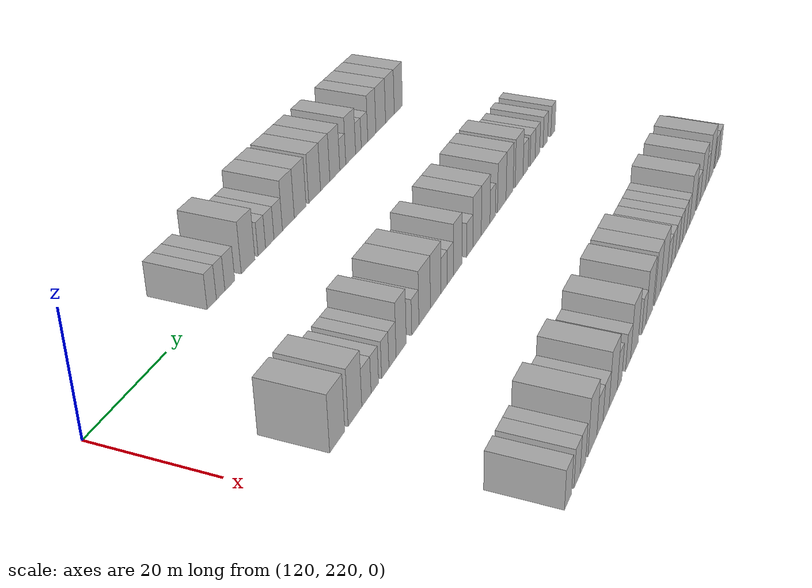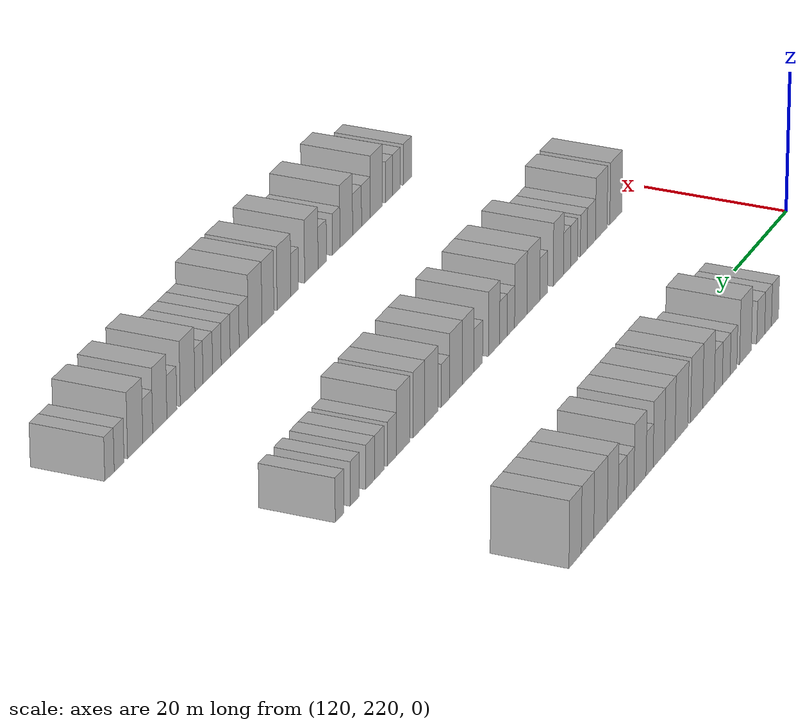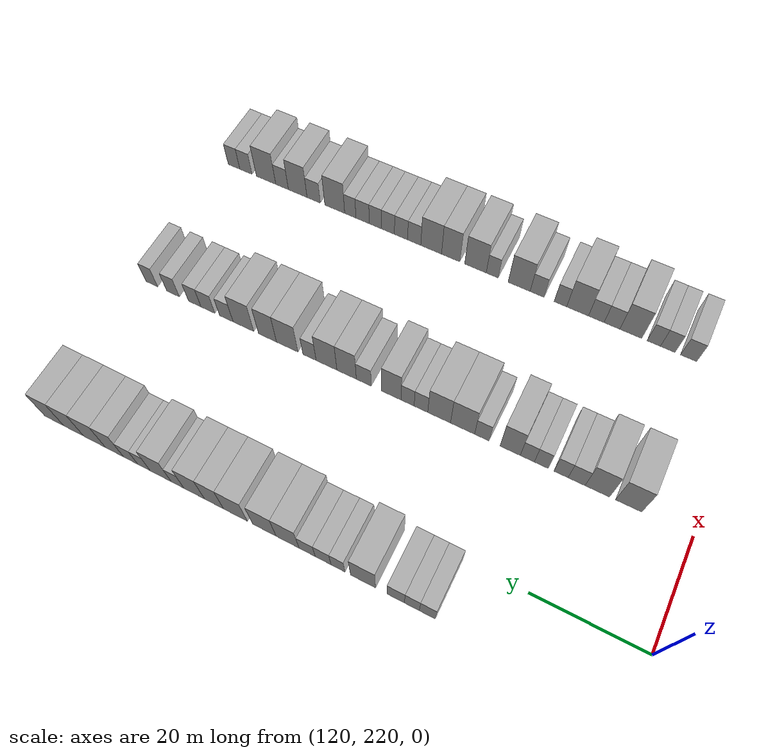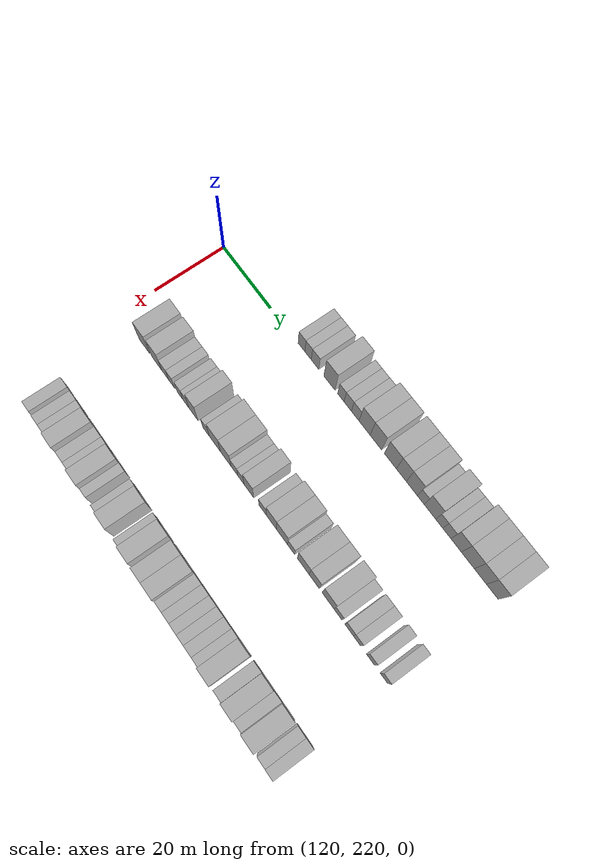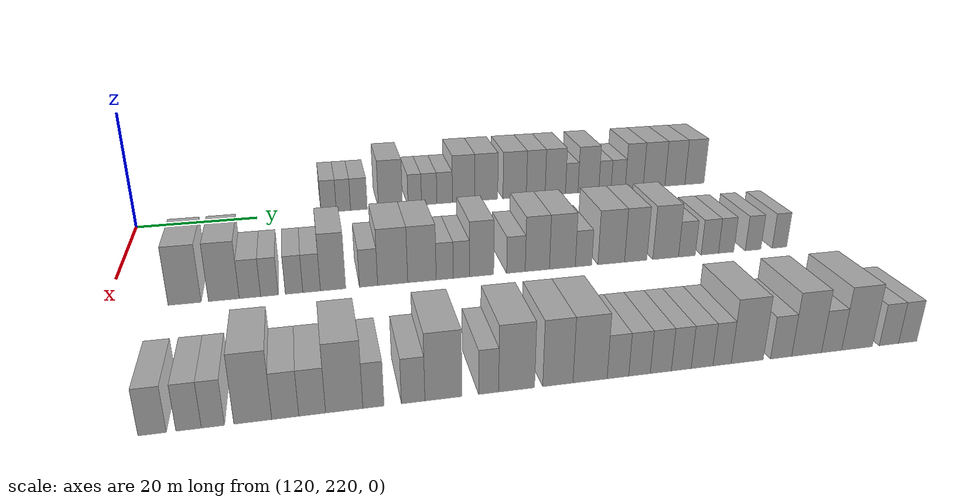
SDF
<sdf version="1.6">
 <world name="default">
  <model name="building_854">
   <static>1</static>
   <pose>115.0000 252.4370 0 0.000000 0.000000 0.000000</pose>
   <link name="link">
    <pose>0 0 3.00 0 0 0</pose>
    <collision name="collision"><geometry><box><size>10.0000 2.6823 6.0000</size></box></geometry></collision>
    <visual name="visual">
     <cast_shadows>0</cast_shadows>
     <geometry><box><size>10.0000 2.6823 6.0000</size></box></geometry>
     <material>
      <script>
       <uri>model://HANNAS_wall/materials/scripts</uri>
       <uri>model://HANNAS_wall/materials/textures</uri>
       <name>vrc/HANNAS_wall</name>
      </script>
     </material>
    </visual>
   </link>
  </model>
  <model name="building_855">
   <static>1</static>
   <pose>115.0000 255.0472 0 0.000000 0.000000 0.000000</pose>
   <link name="link">
    <pose>0 0 3.00 0 0 0</pose>
    <collision name="collision"><geometry><box><size>10.0000 2.5382 6.0000</size></box></geometry></collision>
    <visual name="visual">
     <cast_shadows>0</cast_shadows>
     <geometry><box><size>10.0000 2.5382 6.0000</size></box></geometry>
     <material>
      <script>
       <uri>model://HANNAS_wall/materials/scripts</uri>
       <uri>model://HANNAS_wall/materials/textures</uri>
       <name>vrc/HANNAS_wall</name>
      </script>
     </material>
    </visual>
   </link>
  </model>
  <model name="building_856">
   <static>1</static>
   <pose>115.0000 257.8075 0 0.000000 0.000000 0.000000</pose>
   <link name="link">
    <pose>0 0 3.00 0 0 0</pose>
    <collision name="collision"><geometry><box><size>10.0000 2.9824 6.0000</size></box></geometry></collision>
    <visual name="visual">
     <cast_shadows>0</cast_shadows>
     <geometry><box><size>10.0000 2.9824 6.0000</size></box></geometry>
     <material>
      <script>
       <uri>model://HANNAS_wall/materials/scripts</uri>
       <uri>model://HANNAS_wall/materials/textures</uri>
       <name>vrc/HANNAS_wall</name>
      </script>
     </material>
    </visual>
   </link>
  </model>
  <model name="building_857">
   <static>1</static>
   <pose>115.0000 263.4744 0 0.000000 0.000000 0.000000</pose>
   <link name="link">
    <pose>0 0 4.50 0 0 0</pose>
    <collision name="collision"><geometry><box><size>10.0000 4.3515 9.0000</size></box></geometry></collision>
    <visual name="visual">
     <cast_shadows>0</cast_shadows>
     <geometry><box><size>10.0000 4.3515 9.0000</size></box></geometry>
     <material>
      <script>
       <uri>model://HANNAS_wall/materials/scripts</uri>
       <uri>model://HANNAS_wall/materials/textures</uri>
       <name>vrc/HANNAS_wall</name>
      </script>
     </material>
    </visual>
   </link>
  </model>
  <model name="building_858">
   <static>1</static>
   <pose>115.0000 267.8820 0 0.000000 0.000000 0.000000</pose>
   <link name="link">
    <pose>0 0 3.00 0 0 0</pose>
    <collision name="collision"><geometry><box><size>10.0000 2.4637 6.0000</size></box></geometry></collision>
    <visual name="visual">
     <cast_shadows>0</cast_shadows>
     <geometry><box><size>10.0000 2.4637 6.0000</size></box></geometry>
     <material>
      <script>
       <uri>model://HANNAS_wall/materials/scripts</uri>
       <uri>model://HANNAS_wall/materials/textures</uri>
       <name>vrc/HANNAS_wall</name>
      </script>
     </material>
    </visual>
   </link>
  </model>
  <model name="building_859">
   <static>1</static>
   <pose>115.0000 270.5265 0 0.000000 0.000000 0.000000</pose>
   <link name="link">
    <pose>0 0 3.00 0 0 0</pose>
    <collision name="collision"><geometry><box><size>10.0000 2.8252 6.0000</size></box></geometry></collision>
    <visual name="visual">
     <cast_shadows>0</cast_shadows>
     <geometry><box><size>10.0000 2.8252 6.0000</size></box></geometry>
     <material>
      <script>
       <uri>model://HANNAS_wall/materials/scripts</uri>
       <uri>model://HANNAS_wall/materials/textures</uri>
       <name>vrc/HANNAS_wall</name>
      </script>
     </material>
    </visual>
   </link>
  </model>
  <model name="building_860">
   <static>1</static>
   <pose>115.0000 273.3854 0 0.000000 0.000000 0.000000</pose>
   <link name="link">
    <pose>0 0 3.00 0 0 0</pose>
    <collision name="collision"><geometry><box><size>10.0000 2.8926 6.0000</size></box></geometry></collision>
    <visual name="visual">
     <cast_shadows>0</cast_shadows>
     <geometry><box><size>10.0000 2.8926 6.0000</size></box></geometry>
     <material>
      <script>
       <uri>model://HANNAS_wall/materials/scripts</uri>
       <uri>model://HANNAS_wall/materials/textures</uri>
       <name>vrc/HANNAS_wall</name>
      </script>
     </material>
    </visual>
   </link>
  </model>
  <model name="building_861">
   <static>1</static>
   <pose>115.0000 276.9304 0 0.000000 0.000000 0.000000</pose>
   <link name="link">
    <pose>0 0 4.50 0 0 0</pose>
    <collision name="collision"><geometry><box><size>10.0000 4.1975 9.0000</size></box></geometry></collision>
    <visual name="visual">
     <cast_shadows>0</cast_shadows>
     <geometry><box><size>10.0000 4.1975 9.0000</size></box></geometry>
     <material>
      <script>
       <uri>model://HANNAS_wall/materials/scripts</uri>
       <uri>model://HANNAS_wall/materials/textures</uri>
       <name>vrc/HANNAS_wall</name>
      </script>
     </material>
    </visual>
   </link>
  </model>
  <model name="building_862">
   <static>1</static>
   <pose>115.0000 281.1758 0 0.000000 0.000000 0.000000</pose>
   <link name="link">
    <pose>0 0 4.50 0 0 0</pose>
    <collision name="collision"><geometry><box><size>10.0000 4.2934 9.0000</size></box></geometry></collision>
    <visual name="visual">
     <cast_shadows>0</cast_shadows>
     <geometry><box><size>10.0000 4.2934 9.0000</size></box></geometry>
     <material>
      <script>
       <uri>model://HANNAS_wall/materials/scripts</uri>
       <uri>model://HANNAS_wall/materials/textures</uri>
       <name>vrc/HANNAS_wall</name>
      </script>
     </material>
    </visual>
   </link>
  </model>
  <model name="building_863">
   <static>1</static>
   <pose>115.0000 286.5592 0 0.000000 0.000000 0.000000</pose>
   <link name="link">
    <pose>0 0 4.50 0 0 0</pose>
    <collision name="collision"><geometry><box><size>10.0000 4.4733 9.0000</size></box></geometry></collision>
    <visual name="visual">
     <cast_shadows>0</cast_shadows>
     <geometry><box><size>10.0000 4.4733 9.0000</size></box></geometry>
     <material>
      <script>
       <uri>model://HANNAS_wall/materials/scripts</uri>
       <uri>model://HANNAS_wall/materials/textures</uri>
       <name>vrc/HANNAS_wall</name>
      </script>
     </material>
    </visual>
   </link>
  </model>
  <model name="building_864">
   <static>1</static>
   <pose>115.0000 290.6041 0 0.000000 0.000000 0.000000</pose>
   <link name="link">
    <pose>0 0 4.50 0 0 0</pose>
    <collision name="collision"><geometry><box><size>10.0000 3.6166 9.0000</size></box></geometry></collision>
    <visual name="visual">
     <cast_shadows>0</cast_shadows>
     <geometry><box><size>10.0000 3.6166 9.0000</size></box></geometry>
     <material>
      <script>
       <uri>model://HANNAS_wall/materials/scripts</uri>
       <uri>model://HANNAS_wall/materials/textures</uri>
       <name>vrc/HANNAS_wall</name>
      </script>
     </material>
    </visual>
   </link>
  </model>
  <model name="building_865">
   <static>1</static>
   <pose>115.0000 294.3997 0 0.000000 0.000000 0.000000</pose>
   <link name="link">
    <pose>0 0 4.50 0 0 0</pose>
    <collision name="collision"><geometry><box><size>10.0000 3.9744 9.0000</size></box></geometry></collision>
    <visual name="visual">
     <cast_shadows>0</cast_shadows>
     <geometry><box><size>10.0000 3.9744 9.0000</size></box></geometry>
     <material>
      <script>
       <uri>model://HANNAS_wall/materials/scripts</uri>
       <uri>model://HANNAS_wall/materials/textures</uri>
       <name>vrc/HANNAS_wall</name>
      </script>
     </material>
    </visual>
   </link>
  </model>
  <model name="building_866">
   <static>1</static>
   <pose>115.0000 297.6140 0 0.000000 0.000000 0.000000</pose>
   <link name="link">
    <pose>0 0 3.00 0 0 0</pose>
    <collision name="collision"><geometry><box><size>10.0000 2.4541 6.0000</size></box></geometry></collision>
    <visual name="visual">
     <cast_shadows>0</cast_shadows>
     <geometry><box><size>10.0000 2.4541 6.0000</size></box></geometry>
     <material>
      <script>
       <uri>model://HANNAS_wall/materials/scripts</uri>
       <uri>model://HANNAS_wall/materials/textures</uri>
       <name>vrc/HANNAS_wall</name>
      </script>
     </material>
    </visual>
   </link>
  </model>
  <model name="building_867">
   <static>1</static>
   <pose>115.0000 300.9018 0 0.000000 0.000000 0.000000</pose>
   <link name="link">
    <pose>0 0 4.50 0 0 0</pose>
    <collision name="collision"><geometry><box><size>10.0000 4.1215 9.0000</size></box></geometry></collision>
    <visual name="visual">
     <cast_shadows>0</cast_shadows>
     <geometry><box><size>10.0000 4.1215 9.0000</size></box></geometry>
     <material>
      <script>
       <uri>model://HANNAS_wall/materials/scripts</uri>
       <uri>model://HANNAS_wall/materials/textures</uri>
       <name>vrc/HANNAS_wall</name>
      </script>
     </material>
    </visual>
   </link>
  </model>
  <model name="building_868">
   <static>1</static>
   <pose>115.0000 304.1891 0 0.000000 0.000000 0.000000</pose>
   <link name="link">
    <pose>0 0 3.00 0 0 0</pose>
    <collision name="collision"><geometry><box><size>10.0000 2.4531 6.0000</size></box></geometry></collision>
    <visual name="visual">
     <cast_shadows>0</cast_shadows>
     <geometry><box><size>10.0000 2.4531 6.0000</size></box></geometry>
     <material>
      <script>
       <uri>model://HANNAS_wall/materials/scripts</uri>
       <uri>model://HANNAS_wall/materials/textures</uri>
       <name>vrc/HANNAS_wall</name>
      </script>
     </material>
    </visual>
   </link>
  </model>
  <model name="building_869">
   <static>1</static>
   <pose>115.0000 306.8371 0 0.000000 0.000000 0.000000</pose>
   <link name="link">
    <pose>0 0 3.00 0 0 0</pose>
    <collision name="collision"><geometry><box><size>10.0000 2.8430 6.0000</size></box></geometry></collision>
    <visual name="visual">
     <cast_shadows>0</cast_shadows>
     <geometry><box><size>10.0000 2.8430 6.0000</size></box></geometry>
     <material>
      <script>
       <uri>model://HANNAS_wall/materials/scripts</uri>
       <uri>model://HANNAS_wall/materials/textures</uri>
       <name>vrc/HANNAS_wall</name>
      </script>
     </material>
    </visual>
   </link>
  </model>
  <model name="building_870">
   <static>1</static>
   <pose>115.0000 310.0713 0 0.000000 0.000000 0.000000</pose>
   <link name="link">
    <pose>0 0 4.50 0 0 0</pose>
    <collision name="collision"><geometry><box><size>10.0000 3.6255 9.0000</size></box></geometry></collision>
    <visual name="visual">
     <cast_shadows>0</cast_shadows>
     <geometry><box><size>10.0000 3.6255 9.0000</size></box></geometry>
     <material>
      <script>
       <uri>model://HANNAS_wall/materials/scripts</uri>
       <uri>model://HANNAS_wall/materials/textures</uri>
       <name>vrc/HANNAS_wall</name>
      </script>
     </material>
    </visual>
   </link>
  </model>
  <model name="building_871">
   <static>1</static>
   <pose>115.0000 314.1056 0 0.000000 0.000000 0.000000</pose>
   <link name="link">
    <pose>0 0 4.50 0 0 0</pose>
    <collision name="collision"><geometry><box><size>10.0000 4.4431 9.0000</size></box></geometry></collision>
    <visual name="visual">
     <cast_shadows>0</cast_shadows>
     <geometry><box><size>10.0000 4.4431 9.0000</size></box></geometry>
     <material>
      <script>
       <uri>model://HANNAS_wall/materials/scripts</uri>
       <uri>model://HANNAS_wall/materials/textures</uri>
       <name>vrc/HANNAS_wall</name>
      </script>
     </material>
    </visual>
   </link>
  </model>
  <model name="building_872">
   <static>1</static>
   <pose>115.0000 318.3828 0 0.000000 0.000000 0.000000</pose>
   <link name="link">
    <pose>0 0 4.50 0 0 0</pose>
    <collision name="collision"><geometry><box><size>10.0000 4.1112 9.0000</size></box></geometry></collision>
    <visual name="visual">
     <cast_shadows>0</cast_shadows>
     <geometry><box><size>10.0000 4.1112 9.0000</size></box></geometry>
     <material>
      <script>
       <uri>model://HANNAS_wall/materials/scripts</uri>
       <uri>model://HANNAS_wall/materials/textures</uri>
       <name>vrc/HANNAS_wall</name>
      </script>
     </material>
    </visual>
   </link>
  </model>
  <model name="building_873">
   <static>1</static>
   <pose>115.0000 322.4272 0 0.000000 0.000000 0.000000</pose>
   <link name="link">
    <pose>0 0 4.50 0 0 0</pose>
    <collision name="collision"><geometry><box><size>10.0000 3.9776 9.0000</size></box></geometry></collision>
    <visual name="visual">
     <cast_shadows>0</cast_shadows>
     <geometry><box><size>10.0000 3.9776 9.0000</size></box></geometry>
     <material>
      <script>
       <uri>model://HANNAS_wall/materials/scripts</uri>
       <uri>model://HANNAS_wall/materials/textures</uri>
       <name>vrc/HANNAS_wall</name>
      </script>
     </material>
    </visual>
   </link>
  </model>
  <model name="building_1074">
   <static>1</static>
   <pose>145.0000 230.8686 0 0.000000 0.000000 0.000000</pose>
   <link name="link">
    <pose>0 0 4.50 0 0 0</pose>
    <collision name="collision"><geometry><box><size>10.0000 4.4653 9.0000</size></box></geometry></collision>
    <visual name="visual">
     <cast_shadows>0</cast_shadows>
     <geometry><box><size>10.0000 4.4653 9.0000</size></box></geometry>
     <material>
      <script>
       <uri>model://HANNAS_wall/materials/scripts</uri>
       <uri>model://HANNAS_wall/materials/textures</uri>
       <name>vrc/HANNAS_wall</name>
      </script>
     </material>
    </visual>
   </link>
  </model>
  <model name="building_1075">
   <static>1</static>
   <pose>145.0000 236.2226 0 0.000000 0.000000 0.000000</pose>
   <link name="link">
    <pose>0 0 4.50 0 0 0</pose>
    <collision name="collision"><geometry><box><size>10.0000 4.2427 9.0000</size></box></geometry></collision>
    <visual name="visual">
     <cast_shadows>0</cast_shadows>
     <geometry><box><size>10.0000 4.2427 9.0000</size></box></geometry>
     <material>
      <script>
       <uri>model://HANNAS_wall/materials/scripts</uri>
       <uri>model://HANNAS_wall/materials/textures</uri>
       <name>vrc/HANNAS_wall</name>
      </script>
     </material>
    </visual>
   </link>
  </model>
  <model name="building_1076">
   <static>1</static>
   <pose>145.0000 239.8336 0 0.000000 0.000000 0.000000</pose>
   <link name="link">
    <pose>0 0 3.00 0 0 0</pose>
    <collision name="collision"><geometry><box><size>10.0000 2.9792 6.0000</size></box></geometry></collision>
    <visual name="visual">
     <cast_shadows>0</cast_shadows>
     <geometry><box><size>10.0000 2.9792 6.0000</size></box></geometry>
     <material>
      <script>
       <uri>model://HANNAS_wall/materials/scripts</uri>
       <uri>model://HANNAS_wall/materials/textures</uri>
       <name>vrc/HANNAS_wall</name>
      </script>
     </material>
    </visual>
   </link>
  </model>
  <model name="building_1077">
   <static>1</static>
   <pose>145.0000 242.5598 0 0.000000 0.000000 0.000000</pose>
   <link name="link">
    <pose>0 0 3.00 0 0 0</pose>
    <collision name="collision"><geometry><box><size>10.0000 2.4732 6.0000</size></box></geometry></collision>
    <visual name="visual">
     <cast_shadows>0</cast_shadows>
     <geometry><box><size>10.0000 2.4732 6.0000</size></box></geometry>
     <material>
      <script>
       <uri>model://HANNAS_wall/materials/scripts</uri>
       <uri>model://HANNAS_wall/materials/textures</uri>
       <name>vrc/HANNAS_wall</name>
      </script>
     </material>
    </visual>
   </link>
  </model>
  <model name="building_1078">
   <static>1</static>
   <pose>145.0000 246.0397 0 0.000000 0.000000 0.000000</pose>
   <link name="link">
    <pose>0 0 3.00 0 0 0</pose>
    <collision name="collision"><geometry><box><size>10.0000 2.4866 6.0000</size></box></geometry></collision>
    <visual name="visual">
     <cast_shadows>0</cast_shadows>
     <geometry><box><size>10.0000 2.4866 6.0000</size></box></geometry>
     <material>
      <script>
       <uri>model://HANNAS_wall/materials/scripts</uri>
       <uri>model://HANNAS_wall/materials/textures</uri>
       <name>vrc/HANNAS_wall</name>
      </script>
     </material>
    </visual>
   </link>
  </model>
  <model name="building_1079">
   <static>1</static>
   <pose>145.0000 248.5373 0 0.000000 0.000000 0.000000</pose>
   <link name="link">
    <pose>0 0 3.00 0 0 0</pose>
    <collision name="collision"><geometry><box><size>10.0000 2.5085 6.0000</size></box></geometry></collision>
    <visual name="visual">
     <cast_shadows>0</cast_shadows>
     <geometry><box><size>10.0000 2.5085 6.0000</size></box></geometry>
     <material>
      <script>
       <uri>model://HANNAS_wall/materials/scripts</uri>
       <uri>model://HANNAS_wall/materials/textures</uri>
       <name>vrc/HANNAS_wall</name>
      </script>
     </material>
    </visual>
   </link>
  </model>
  <model name="building_1080">
   <static>1</static>
   <pose>145.0000 251.6154 0 0.000000 0.000000 0.000000</pose>
   <link name="link">
    <pose>0 0 4.50 0 0 0</pose>
    <collision name="collision"><geometry><box><size>10.0000 3.6478 9.0000</size></box></geometry></collision>
    <visual name="visual">
     <cast_shadows>0</cast_shadows>
     <geometry><box><size>10.0000 3.6478 9.0000</size></box></geometry>
     <material>
      <script>
       <uri>model://HANNAS_wall/materials/scripts</uri>
       <uri>model://HANNAS_wall/materials/textures</uri>
       <name>vrc/HANNAS_wall</name>
      </script>
     </material>
    </visual>
   </link>
  </model>
  <model name="building_1081">
   <static>1</static>
   <pose>145.0000 256.7759 0 0.000000 0.000000 0.000000</pose>
   <link name="link">
    <pose>0 0 3.00 0 0 0</pose>
    <collision name="collision"><geometry><box><size>10.0000 2.6732 6.0000</size></box></geometry></collision>
    <visual name="visual">
     <cast_shadows>0</cast_shadows>
     <geometry><box><size>10.0000 2.6732 6.0000</size></box></geometry>
     <material>
      <script>
       <uri>model://HANNAS_wall/materials/scripts</uri>
       <uri>model://HANNAS_wall/materials/textures</uri>
       <name>vrc/HANNAS_wall</name>
      </script>
     </material>
    </visual>
   </link>
  </model>
  <model name="building_1082">
   <static>1</static>
   <pose>145.0000 260.3381 0 0.000000 0.000000 0.000000</pose>
   <link name="link">
    <pose>0 0 4.50 0 0 0</pose>
    <collision name="collision"><geometry><box><size>10.0000 4.4512 9.0000</size></box></geometry></collision>
    <visual name="visual">
     <cast_shadows>0</cast_shadows>
     <geometry><box><size>10.0000 4.4512 9.0000</size></box></geometry>
     <material>
      <script>
       <uri>model://HANNAS_wall/materials/scripts</uri>
       <uri>model://HANNAS_wall/materials/textures</uri>
       <name>vrc/HANNAS_wall</name>
      </script>
     </material>
    </visual>
   </link>
  </model>
  <model name="building_1083">
   <static>1</static>
   <pose>145.0000 264.6949 0 0.000000 0.000000 0.000000</pose>
   <link name="link">
    <pose>0 0 4.50 0 0 0</pose>
    <collision name="collision"><geometry><box><size>10.0000 4.2624 9.0000</size></box></geometry></collision>
    <visual name="visual">
     <cast_shadows>0</cast_shadows>
     <geometry><box><size>10.0000 4.2624 9.0000</size></box></geometry>
     <material>
      <script>
       <uri>model://HANNAS_wall/materials/scripts</uri>
       <uri>model://HANNAS_wall/materials/textures</uri>
       <name>vrc/HANNAS_wall</name>
      </script>
     </material>
    </visual>
   </link>
  </model>
  <model name="building_1084">
   <static>1</static>
   <pose>145.0000 268.1164 0 0.000000 0.000000 0.000000</pose>
   <link name="link">
    <pose>0 0 3.00 0 0 0</pose>
    <collision name="collision"><geometry><box><size>10.0000 2.5806 6.0000</size></box></geometry></collision>
    <visual name="visual">
     <cast_shadows>0</cast_shadows>
     <geometry><box><size>10.0000 2.5806 6.0000</size></box></geometry>
     <material>
      <script>
       <uri>model://HANNAS_wall/materials/scripts</uri>
       <uri>model://HANNAS_wall/materials/textures</uri>
       <name>vrc/HANNAS_wall</name>
      </script>
     </material>
    </visual>
   </link>
  </model>
  <model name="building_1085">
   <static>1</static>
   <pose>145.0000 270.6516 0 0.000000 0.000000 0.000000</pose>
   <link name="link">
    <pose>0 0 3.00 0 0 0</pose>
    <collision name="collision"><geometry><box><size>10.0000 2.4898 6.0000</size></box></geometry></collision>
    <visual name="visual">
     <cast_shadows>0</cast_shadows>
     <geometry><box><size>10.0000 2.4898 6.0000</size></box></geometry>
     <material>
      <script>
       <uri>model://HANNAS_wall/materials/scripts</uri>
       <uri>model://HANNAS_wall/materials/textures</uri>
       <name>vrc/HANNAS_wall</name>
      </script>
     </material>
    </visual>
   </link>
  </model>
  <model name="building_1086">
   <static>1</static>
   <pose>145.0000 273.7678 0 0.000000 0.000000 0.000000</pose>
   <link name="link">
    <pose>0 0 4.50 0 0 0</pose>
    <collision name="collision"><geometry><box><size>10.0000 3.7425 9.0000</size></box></geometry></collision>
    <visual name="visual">
     <cast_shadows>0</cast_shadows>
     <geometry><box><size>10.0000 3.7425 9.0000</size></box></geometry>
     <material>
      <script>
       <uri>model://HANNAS_wall/materials/scripts</uri>
       <uri>model://HANNAS_wall/materials/textures</uri>
       <name>vrc/HANNAS_wall</name>
      </script>
     </material>
    </visual>
   </link>
  </model>
  <model name="building_1087">
   <static>1</static>
   <pose>145.0000 279.0956 0 0.000000 0.000000 0.000000</pose>
   <link name="link">
    <pose>0 0 3.00 0 0 0</pose>
    <collision name="collision"><geometry><box><size>10.0000 2.9132 6.0000</size></box></geometry></collision>
    <visual name="visual">
     <cast_shadows>0</cast_shadows>
     <geometry><box><size>10.0000 2.9132 6.0000</size></box></geometry>
     <material>
      <script>
       <uri>model://HANNAS_wall/materials/scripts</uri>
       <uri>model://HANNAS_wall/materials/textures</uri>
       <name>vrc/HANNAS_wall</name>
      </script>
     </material>
    </visual>
   </link>
  </model>
  <model name="building_1088">
   <static>1</static>
   <pose>145.0000 282.4677 0 0.000000 0.000000 0.000000</pose>
   <link name="link">
    <pose>0 0 4.50 0 0 0</pose>
    <collision name="collision"><geometry><box><size>10.0000 3.8310 9.0000</size></box></geometry></collision>
    <visual name="visual">
     <cast_shadows>0</cast_shadows>
     <geometry><box><size>10.0000 3.8310 9.0000</size></box></geometry>
     <material>
      <script>
       <uri>model://HANNAS_wall/materials/scripts</uri>
       <uri>model://HANNAS_wall/materials/textures</uri>
       <name>vrc/HANNAS_wall</name>
      </script>
     </material>
    </visual>
   </link>
  </model>
  <model name="building_1089">
   <static>1</static>
   <pose>145.0000 286.4557 0 0.000000 0.000000 0.000000</pose>
   <link name="link">
    <pose>0 0 4.50 0 0 0</pose>
    <collision name="collision"><geometry><box><size>10.0000 4.1450 9.0000</size></box></geometry></collision>
    <visual name="visual">
     <cast_shadows>0</cast_shadows>
     <geometry><box><size>10.0000 4.1450 9.0000</size></box></geometry>
     <material>
      <script>
       <uri>model://HANNAS_wall/materials/scripts</uri>
       <uri>model://HANNAS_wall/materials/textures</uri>
       <name>vrc/HANNAS_wall</name>
      </script>
     </material>
    </visual>
   </link>
  </model>
  <model name="building_1090">
   <static>1</static>
   <pose>145.0000 289.8568 0 0.000000 0.000000 0.000000</pose>
   <link name="link">
    <pose>0 0 3.00 0 0 0</pose>
    <collision name="collision"><geometry><box><size>10.0000 2.6572 6.0000</size></box></geometry></collision>
    <visual name="visual">
     <cast_shadows>0</cast_shadows>
     <geometry><box><size>10.0000 2.6572 6.0000</size></box></geometry>
     <material>
      <script>
       <uri>model://HANNAS_wall/materials/scripts</uri>
       <uri>model://HANNAS_wall/materials/textures</uri>
       <name>vrc/HANNAS_wall</name>
      </script>
     </material>
    </visual>
   </link>
  </model>
  <model name="building_1091">
   <static>1</static>
   <pose>145.0000 294.3674 0 0.000000 0.000000 0.000000</pose>
   <link name="link">
    <pose>0 0 4.50 0 0 0</pose>
    <collision name="collision"><geometry><box><size>10.0000 4.3638 9.0000</size></box></geometry></collision>
    <visual name="visual">
     <cast_shadows>0</cast_shadows>
     <geometry><box><size>10.0000 4.3638 9.0000</size></box></geometry>
     <material>
      <script>
       <uri>model://HANNAS_wall/materials/scripts</uri>
       <uri>model://HANNAS_wall/materials/textures</uri>
       <name>vrc/HANNAS_wall</name>
      </script>
     </material>
    </visual>
   </link>
  </model>
  <model name="building_1092">
   <static>1</static>
   <pose>145.0000 298.3965 0 0.000000 0.000000 0.000000</pose>
   <link name="link">
    <pose>0 0 4.50 0 0 0</pose>
    <collision name="collision"><geometry><box><size>10.0000 3.6945 9.0000</size></box></geometry></collision>
    <visual name="visual">
     <cast_shadows>0</cast_shadows>
     <geometry><box><size>10.0000 3.6945 9.0000</size></box></geometry>
     <material>
      <script>
       <uri>model://HANNAS_wall/materials/scripts</uri>
       <uri>model://HANNAS_wall/materials/textures</uri>
       <name>vrc/HANNAS_wall</name>
      </script>
     </material>
    </visual>
   </link>
  </model>
  <model name="building_1093">
   <static>1</static>
   <pose>145.0000 303.4005 0 0.000000 0.000000 0.000000</pose>
   <link name="link">
    <pose>0 0 4.50 0 0 0</pose>
    <collision name="collision"><geometry><box><size>10.0000 4.3134 9.0000</size></box></geometry></collision>
    <visual name="visual">
     <cast_shadows>0</cast_shadows>
     <geometry><box><size>10.0000 4.3134 9.0000</size></box></geometry>
     <material>
      <script>
       <uri>model://HANNAS_wall/materials/scripts</uri>
       <uri>model://HANNAS_wall/materials/textures</uri>
       <name>vrc/HANNAS_wall</name>
      </script>
     </material>
    </visual>
   </link>
  </model>
  <model name="building_1094">
   <static>1</static>
   <pose>145.0000 306.9795 0 0.000000 0.000000 0.000000</pose>
   <link name="link">
    <pose>0 0 3.00 0 0 0</pose>
    <collision name="collision"><geometry><box><size>10.0000 2.8446 6.0000</size></box></geometry></collision>
    <visual name="visual">
     <cast_shadows>0</cast_shadows>
     <geometry><box><size>10.0000 2.8446 6.0000</size></box></geometry>
     <material>
      <script>
       <uri>model://HANNAS_wall/materials/scripts</uri>
       <uri>model://HANNAS_wall/materials/textures</uri>
       <name>vrc/HANNAS_wall</name>
      </script>
     </material>
    </visual>
   </link>
  </model>
  <model name="building_1095">
   <static>1</static>
   <pose>145.0000 310.8859 0 0.000000 0.000000 0.000000</pose>
   <link name="link">
    <pose>0 0 3.00 0 0 0</pose>
    <collision name="collision"><geometry><box><size>10.0000 2.9682 6.0000</size></box></geometry></collision>
    <visual name="visual">
     <cast_shadows>0</cast_shadows>
     <geometry><box><size>10.0000 2.9682 6.0000</size></box></geometry>
     <material>
      <script>
       <uri>model://HANNAS_wall/materials/scripts</uri>
       <uri>model://HANNAS_wall/materials/textures</uri>
       <name>vrc/HANNAS_wall</name>
      </script>
     </material>
    </visual>
   </link>
  </model>
  <model name="building_1096">
   <static>1</static>
   <pose>145.0000 313.6994 0 0.000000 0.000000 0.000000</pose>
   <link name="link">
    <pose>0 0 3.00 0 0 0</pose>
    <collision name="collision"><geometry><box><size>10.0000 2.6588 6.0000</size></box></geometry></collision>
    <visual name="visual">
     <cast_shadows>0</cast_shadows>
     <geometry><box><size>10.0000 2.6588 6.0000</size></box></geometry>
     <material>
      <script>
       <uri>model://HANNAS_wall/materials/scripts</uri>
       <uri>model://HANNAS_wall/materials/textures</uri>
       <name>vrc/HANNAS_wall</name>
      </script>
     </material>
    </visual>
   </link>
  </model>
  <model name="building_1097">
   <static>1</static>
   <pose>145.0000 318.3932 0 0.000000 0.000000 0.000000</pose>
   <link name="link">
    <pose>0 0 3.00 0 0 0</pose>
    <collision name="collision"><geometry><box><size>10.0000 2.7286 6.0000</size></box></geometry></collision>
    <visual name="visual">
     <cast_shadows>0</cast_shadows>
     <geometry><box><size>10.0000 2.7286 6.0000</size></box></geometry>
     <material>
      <script>
       <uri>model://HANNAS_wall/materials/scripts</uri>
       <uri>model://HANNAS_wall/materials/textures</uri>
       <name>vrc/HANNAS_wall</name>
      </script>
     </material>
    </visual>
   </link>
  </model>
  <model name="building_1098">
   <static>1</static>
   <pose>145.0000 323.0457 0 0.000000 0.000000 0.000000</pose>
   <link name="link">
    <pose>0 0 3.00 0 0 0</pose>
    <collision name="collision"><geometry><box><size>10.0000 2.5765 6.0000</size></box></geometry></collision>
    <visual name="visual">
     <cast_shadows>0</cast_shadows>
     <geometry><box><size>10.0000 2.5765 6.0000</size></box></geometry>
     <material>
      <script>
       <uri>model://HANNAS_wall/materials/scripts</uri>
       <uri>model://HANNAS_wall/materials/textures</uri>
       <name>vrc/HANNAS_wall</name>
      </script>
     </material>
    </visual>
   </link>
  </model>
  <model name="building_1304">
   <static>1</static>
   <pose>175.0000 230.4719 0 0.000000 0.000000 0.000000</pose>
   <link name="link">
    <pose>0 0 3.00 0 0 0</pose>
    <collision name="collision"><geometry><box><size>10.0000 2.9475 6.0000</size></box></geometry></collision>
    <visual name="visual">
     <cast_shadows>0</cast_shadows>
     <geometry><box><size>10.0000 2.9475 6.0000</size></box></geometry>
     <material>
      <script>
       <uri>model://HANNAS_wall/materials/scripts</uri>
       <uri>model://HANNAS_wall/materials/textures</uri>
       <name>vrc/HANNAS_wall</name>
      </script>
     </material>
    </visual>
   </link>
  </model>
  <model name="building_1305">
   <static>1</static>
   <pose>175.0000 234.2910 0 0.000000 0.000000 0.000000</pose>
   <link name="link">
    <pose>0 0 3.00 0 0 0</pose>
    <collision name="collision"><geometry><box><size>10.0000 2.6906 6.0000</size></box></geometry></collision>
    <visual name="visual">
     <cast_shadows>0</cast_shadows>
     <geometry><box><size>10.0000 2.6906 6.0000</size></box></geometry>
     <material>
      <script>
       <uri>model://HANNAS_wall/materials/scripts</uri>
       <uri>model://HANNAS_wall/materials/textures</uri>
       <name>vrc/HANNAS_wall</name>
      </script>
     </material>
    </visual>
   </link>
  </model>
  <model name="building_1306">
   <static>1</static>
   <pose>175.0000 236.8689 0 0.000000 0.000000 0.000000</pose>
   <link name="link">
    <pose>0 0 3.00 0 0 0</pose>
    <collision name="collision"><geometry><box><size>10.0000 2.4653 6.0000</size></box></geometry></collision>
    <visual name="visual">
     <cast_shadows>0</cast_shadows>
     <geometry><box><size>10.0000 2.4653 6.0000</size></box></geometry>
     <material>
      <script>
       <uri>model://HANNAS_wall/materials/scripts</uri>
       <uri>model://HANNAS_wall/materials/textures</uri>
       <name>vrc/HANNAS_wall</name>
      </script>
     </material>
    </visual>
   </link>
  </model>
  <model name="building_1307">
   <static>1</static>
   <pose>175.0000 241.1587 0 0.000000 0.000000 0.000000</pose>
   <link name="link">
    <pose>0 0 4.50 0 0 0</pose>
    <collision name="collision"><geometry><box><size>10.0000 4.1144 9.0000</size></box></geometry></collision>
    <visual name="visual">
     <cast_shadows>0</cast_shadows>
     <geometry><box><size>10.0000 4.1144 9.0000</size></box></geometry>
     <material>
      <script>
       <uri>model://HANNAS_wall/materials/scripts</uri>
       <uri>model://HANNAS_wall/materials/textures</uri>
       <name>vrc/HANNAS_wall</name>
      </script>
     </material>
    </visual>
   </link>
  </model>
  <model name="building_1308">
   <static>1</static>
   <pose>175.0000 244.7027 0 0.000000 0.000000 0.000000</pose>
   <link name="link">
    <pose>0 0 3.00 0 0 0</pose>
    <collision name="collision"><geometry><box><size>10.0000 2.9735 6.0000</size></box></geometry></collision>
    <visual name="visual">
     <cast_shadows>0</cast_shadows>
     <geometry><box><size>10.0000 2.9735 6.0000</size></box></geometry>
     <material>
      <script>
       <uri>model://HANNAS_wall/materials/scripts</uri>
       <uri>model://HANNAS_wall/materials/textures</uri>
       <name>vrc/HANNAS_wall</name>
      </script>
     </material>
    </visual>
   </link>
  </model>
  <model name="building_1309">
   <static>1</static>
   <pose>175.0000 247.6807 0 0.000000 0.000000 0.000000</pose>
   <link name="link">
    <pose>0 0 3.00 0 0 0</pose>
    <collision name="collision"><geometry><box><size>10.0000 2.9825 6.0000</size></box></geometry></collision>
    <visual name="visual">
     <cast_shadows>0</cast_shadows>
     <geometry><box><size>10.0000 2.9825 6.0000</size></box></geometry>
     <material>
      <script>
       <uri>model://HANNAS_wall/materials/scripts</uri>
       <uri>model://HANNAS_wall/materials/textures</uri>
       <name>vrc/HANNAS_wall</name>
      </script>
     </material>
    </visual>
   </link>
  </model>
  <model name="building_1310">
   <static>1</static>
   <pose>175.0000 251.2773 0 0.000000 0.000000 0.000000</pose>
   <link name="link">
    <pose>0 0 4.50 0 0 0</pose>
    <collision name="collision"><geometry><box><size>10.0000 4.2107 9.0000</size></box></geometry></collision>
    <visual name="visual">
     <cast_shadows>0</cast_shadows>
     <geometry><box><size>10.0000 4.2107 9.0000</size></box></geometry>
     <material>
      <script>
       <uri>model://HANNAS_wall/materials/scripts</uri>
       <uri>model://HANNAS_wall/materials/textures</uri>
       <name>vrc/HANNAS_wall</name>
      </script>
     </material>
    </visual>
   </link>
  </model>
  <model name="building_1311">
   <static>1</static>
   <pose>175.0000 254.5906 0 0.000000 0.000000 0.000000</pose>
   <link name="link">
    <pose>0 0 3.00 0 0 0</pose>
    <collision name="collision"><geometry><box><size>10.0000 2.4158 6.0000</size></box></geometry></collision>
    <visual name="visual">
     <cast_shadows>0</cast_shadows>
     <geometry><box><size>10.0000 2.4158 6.0000</size></box></geometry>
     <material>
      <script>
       <uri>model://HANNAS_wall/materials/scripts</uri>
       <uri>model://HANNAS_wall/materials/textures</uri>
       <name>vrc/HANNAS_wall</name>
      </script>
     </material>
    </visual>
   </link>
  </model>
  <model name="building_1312">
   <static>1</static>
   <pose>175.0000 259.1657 0 0.000000 0.000000 0.000000</pose>
   <link name="link">
    <pose>0 0 3.00 0 0 0</pose>
    <collision name="collision"><geometry><box><size>10.0000 2.7343 6.0000</size></box></geometry></collision>
    <visual name="visual">
     <cast_shadows>0</cast_shadows>
     <geometry><box><size>10.0000 2.7343 6.0000</size></box></geometry>
     <material>
      <script>
       <uri>model://HANNAS_wall/materials/scripts</uri>
       <uri>model://HANNAS_wall/materials/textures</uri>
       <name>vrc/HANNAS_wall</name>
      </script>
     </material>
    </visual>
   </link>
  </model>
  <model name="building_1313">
   <static>1</static>
   <pose>175.0000 262.7105 0 0.000000 0.000000 0.000000</pose>
   <link name="link">
    <pose>0 0 4.50 0 0 0</pose>
    <collision name="collision"><geometry><box><size>10.0000 4.3555 9.0000</size></box></geometry></collision>
    <visual name="visual">
     <cast_shadows>0</cast_shadows>
     <geometry><box><size>10.0000 4.3555 9.0000</size></box></geometry>
     <material>
      <script>
       <uri>model://HANNAS_wall/materials/scripts</uri>
       <uri>model://HANNAS_wall/materials/textures</uri>
       <name>vrc/HANNAS_wall</name>
      </script>
     </material>
    </visual>
   </link>
  </model>
  <model name="building_1314">
   <static>1</static>
   <pose>175.0000 268.0953 0 0.000000 0.000000 0.000000</pose>
   <link name="link">
    <pose>0 0 3.00 0 0 0</pose>
    <collision name="collision"><geometry><box><size>10.0000 2.4140 6.0000</size></box></geometry></collision>
    <visual name="visual">
     <cast_shadows>0</cast_shadows>
     <geometry><box><size>10.0000 2.4140 6.0000</size></box></geometry>
     <material>
      <script>
       <uri>model://HANNAS_wall/materials/scripts</uri>
       <uri>model://HANNAS_wall/materials/textures</uri>
       <name>vrc/HANNAS_wall</name>
      </script>
     </material>
    </visual>
   </link>
  </model>
  <model name="building_1315">
   <static>1</static>
   <pose>175.0000 271.4917 0 0.000000 0.000000 0.000000</pose>
   <link name="link">
    <pose>0 0 4.50 0 0 0</pose>
    <collision name="collision"><geometry><box><size>10.0000 4.3789 9.0000</size></box></geometry></collision>
    <visual name="visual">
     <cast_shadows>0</cast_shadows>
     <geometry><box><size>10.0000 4.3789 9.0000</size></box></geometry>
     <material>
      <script>
       <uri>model://HANNAS_wall/materials/scripts</uri>
       <uri>model://HANNAS_wall/materials/textures</uri>
       <name>vrc/HANNAS_wall</name>
      </script>
     </material>
    </visual>
   </link>
  </model>
  <model name="building_1316">
   <static>1</static>
   <pose>175.0000 276.5632 0 0.000000 0.000000 0.000000</pose>
   <link name="link">
    <pose>0 0 4.50 0 0 0</pose>
    <collision name="collision"><geometry><box><size>10.0000 3.7639 9.0000</size></box></geometry></collision>
    <visual name="visual">
     <cast_shadows>0</cast_shadows>
     <geometry><box><size>10.0000 3.7639 9.0000</size></box></geometry>
     <material>
      <script>
       <uri>model://HANNAS_wall/materials/scripts</uri>
       <uri>model://HANNAS_wall/materials/textures</uri>
       <name>vrc/HANNAS_wall</name>
      </script>
     </material>
    </visual>
   </link>
  </model>
  <model name="building_1317">
   <static>1</static>
   <pose>175.0000 280.5959 0 0.000000 0.000000 0.000000</pose>
   <link name="link">
    <pose>0 0 4.50 0 0 0</pose>
    <collision name="collision"><geometry><box><size>10.0000 4.3016 9.0000</size></box></geometry></collision>
    <visual name="visual">
     <cast_shadows>0</cast_shadows>
     <geometry><box><size>10.0000 4.3016 9.0000</size></box></geometry>
     <material>
      <script>
       <uri>model://HANNAS_wall/materials/scripts</uri>
       <uri>model://HANNAS_wall/materials/textures</uri>
       <name>vrc/HANNAS_wall</name>
      </script>
     </material>
    </visual>
   </link>
  </model>
  <model name="building_1318">
   <static>1</static>
   <pose>175.0000 284.1315 0 0.000000 0.000000 0.000000</pose>
   <link name="link">
    <pose>0 0 3.00 0 0 0</pose>
    <collision name="collision"><geometry><box><size>10.0000 2.7696 6.0000</size></box></geometry></collision>
    <visual name="visual">
     <cast_shadows>0</cast_shadows>
     <geometry><box><size>10.0000 2.7696 6.0000</size></box></geometry>
     <material>
      <script>
       <uri>model://HANNAS_wall/materials/scripts</uri>
       <uri>model://HANNAS_wall/materials/textures</uri>
       <name>vrc/HANNAS_wall</name>
      </script>
     </material>
    </visual>
   </link>
  </model>
  <model name="building_1319">
   <static>1</static>
   <pose>175.0000 286.9081 0 0.000000 0.000000 0.000000</pose>
   <link name="link">
    <pose>0 0 3.00 0 0 0</pose>
    <collision name="collision"><geometry><box><size>10.0000 2.7836 6.0000</size></box></geometry></collision>
    <visual name="visual">
     <cast_shadows>0</cast_shadows>
     <geometry><box><size>10.0000 2.7836 6.0000</size></box></geometry>
     <material>
      <script>
       <uri>model://HANNAS_wall/materials/scripts</uri>
       <uri>model://HANNAS_wall/materials/textures</uri>
       <name>vrc/HANNAS_wall</name>
      </script>
     </material>
    </visual>
   </link>
  </model>
  <model name="building_1320">
   <static>1</static>
   <pose>175.0000 289.6739 0 0.000000 0.000000 0.000000</pose>
   <link name="link">
    <pose>0 0 3.00 0 0 0</pose>
    <collision name="collision"><geometry><box><size>10.0000 2.7479 6.0000</size></box></geometry></collision>
    <visual name="visual">
     <cast_shadows>0</cast_shadows>
     <geometry><box><size>10.0000 2.7479 6.0000</size></box></geometry>
     <material>
      <script>
       <uri>model://HANNAS_wall/materials/scripts</uri>
       <uri>model://HANNAS_wall/materials/textures</uri>
       <name>vrc/HANNAS_wall</name>
      </script>
     </material>
    </visual>
   </link>
  </model>
  <model name="building_1321">
   <static>1</static>
   <pose>175.0000 292.3510 0 0.000000 0.000000 0.000000</pose>
   <link name="link">
    <pose>0 0 3.00 0 0 0</pose>
    <collision name="collision"><geometry><box><size>10.0000 2.6063 6.0000</size></box></geometry></collision>
    <visual name="visual">
     <cast_shadows>0</cast_shadows>
     <geometry><box><size>10.0000 2.6063 6.0000</size></box></geometry>
     <material>
      <script>
       <uri>model://HANNAS_wall/materials/scripts</uri>
       <uri>model://HANNAS_wall/materials/textures</uri>
       <name>vrc/HANNAS_wall</name>
      </script>
     </material>
    </visual>
   </link>
  </model>
  <model name="building_1322">
   <static>1</static>
   <pose>175.0000 295.1061 0 0.000000 0.000000 0.000000</pose>
   <link name="link">
    <pose>0 0 3.00 0 0 0</pose>
    <collision name="collision"><geometry><box><size>10.0000 2.9039 6.0000</size></box></geometry></collision>
    <visual name="visual">
     <cast_shadows>0</cast_shadows>
     <geometry><box><size>10.0000 2.9039 6.0000</size></box></geometry>
     <material>
      <script>
       <uri>model://HANNAS_wall/materials/scripts</uri>
       <uri>model://HANNAS_wall/materials/textures</uri>
       <name>vrc/HANNAS_wall</name>
      </script>
     </material>
    </visual>
   </link>
  </model>
  <model name="building_1323">
   <static>1</static>
   <pose>175.0000 297.7773 0 0.000000 0.000000 0.000000</pose>
   <link name="link">
    <pose>0 0 3.00 0 0 0</pose>
    <collision name="collision"><geometry><box><size>10.0000 2.4385 6.0000</size></box></geometry></collision>
    <visual name="visual">
     <cast_shadows>0</cast_shadows>
     <geometry><box><size>10.0000 2.4385 6.0000</size></box></geometry>
     <material>
      <script>
       <uri>model://HANNAS_wall/materials/scripts</uri>
       <uri>model://HANNAS_wall/materials/textures</uri>
       <name>vrc/HANNAS_wall</name>
      </script>
     </material>
    </visual>
   </link>
  </model>
  <model name="building_1324">
   <static>1</static>
   <pose>175.0000 301.1764 0 0.000000 0.000000 0.000000</pose>
   <link name="link">
    <pose>0 0 4.50 0 0 0</pose>
    <collision name="collision"><geometry><box><size>10.0000 4.3598 9.0000</size></box></geometry></collision>
    <visual name="visual">
     <cast_shadows>0</cast_shadows>
     <geometry><box><size>10.0000 4.3598 9.0000</size></box></geometry>
     <material>
      <script>
       <uri>model://HANNAS_wall/materials/scripts</uri>
       <uri>model://HANNAS_wall/materials/textures</uri>
       <name>vrc/HANNAS_wall</name>
      </script>
     </material>
    </visual>
   </link>
  </model>
  <model name="building_1325">
   <static>1</static>
   <pose>175.0000 305.8214 0 0.000000 0.000000 0.000000</pose>
   <link name="link">
    <pose>0 0 3.00 0 0 0</pose>
    <collision name="collision"><geometry><box><size>10.0000 2.9302 6.0000</size></box></geometry></collision>
    <visual name="visual">
     <cast_shadows>0</cast_shadows>
     <geometry><box><size>10.0000 2.9302 6.0000</size></box></geometry>
     <material>
      <script>
       <uri>model://HANNAS_wall/materials/scripts</uri>
       <uri>model://HANNAS_wall/materials/textures</uri>
       <name>vrc/HANNAS_wall</name>
      </script>
     </material>
    </visual>
   </link>
  </model>
  <model name="building_1326">
   <static>1</static>
   <pose>175.0000 309.3707 0 0.000000 0.000000 0.000000</pose>
   <link name="link">
    <pose>0 0 4.50 0 0 0</pose>
    <collision name="collision"><geometry><box><size>10.0000 4.1685 9.0000</size></box></geometry></collision>
    <visual name="visual">
     <cast_shadows>0</cast_shadows>
     <geometry><box><size>10.0000 4.1685 9.0000</size></box></geometry>
     <material>
      <script>
       <uri>model://HANNAS_wall/materials/scripts</uri>
       <uri>model://HANNAS_wall/materials/textures</uri>
       <name>vrc/HANNAS_wall</name>
      </script>
     </material>
    </visual>
   </link>
  </model>
  <model name="building_1327">
   <static>1</static>
   <pose>175.0000 312.8857 0 0.000000 0.000000 0.000000</pose>
   <link name="link">
    <pose>0 0 3.00 0 0 0</pose>
    <collision name="collision"><geometry><box><size>10.0000 2.8615 6.0000</size></box></geometry></collision>
    <visual name="visual">
     <cast_shadows>0</cast_shadows>
     <geometry><box><size>10.0000 2.8615 6.0000</size></box></geometry>
     <material>
      <script>
       <uri>model://HANNAS_wall/materials/scripts</uri>
       <uri>model://HANNAS_wall/materials/textures</uri>
       <name>vrc/HANNAS_wall</name>
      </script>
     </material>
    </visual>
   </link>
  </model>
  <model name="building_1328">
   <static>1</static>
   <pose>175.0000 316.5225 0 0.000000 0.000000 0.000000</pose>
   <link name="link">
    <pose>0 0 4.50 0 0 0</pose>
    <collision name="collision"><geometry><box><size>10.0000 4.4121 9.0000</size></box></geometry></collision>
    <visual name="visual">
     <cast_shadows>0</cast_shadows>
     <geometry><box><size>10.0000 4.4121 9.0000</size></box></geometry>
     <material>
      <script>
       <uri>model://HANNAS_wall/materials/scripts</uri>
       <uri>model://HANNAS_wall/materials/textures</uri>
       <name>vrc/HANNAS_wall</name>
      </script>
     </material>
    </visual>
   </link>
  </model>
  <model name="building_1329">
   <static>1</static>
   <pose>175.0000 321.1346 0 0.000000 0.000000 0.000000</pose>
   <link name="link">
    <pose>0 0 3.00 0 0 0</pose>
    <collision name="collision"><geometry><box><size>10.0000 2.8119 6.0000</size></box></geometry></collision>
    <visual name="visual">
     <cast_shadows>0</cast_shadows>
     <geometry><box><size>10.0000 2.8119 6.0000</size></box></geometry>
     <material>
      <script>
       <uri>model://HANNAS_wall/materials/scripts</uri>
       <uri>model://HANNAS_wall/materials/textures</uri>
       <name>vrc/HANNAS_wall</name>
      </script>
     </material>
    </visual>
   </link>
  </model>
  <model name="building_1330">
   <static>1</static>
   <pose>175.0000 323.8784 0 0.000000 0.000000 0.000000</pose>
   <link name="link">
    <pose>0 0 3.00 0 0 0</pose>
    <collision name="collision"><geometry><box><size>10.0000 2.6758 6.0000</size></box></geometry></collision>
    <visual name="visual">
     <cast_shadows>0</cast_shadows>
     <geometry><box><size>10.0000 2.6758 6.0000</size></box></geometry>
     <material>
      <script>
       <uri>model://HANNAS_wall/materials/scripts</uri>
       <uri>model://HANNAS_wall/materials/textures</uri>
       <name>vrc/HANNAS_wall</name>
      </script>
     </material>
    </visual>
   </link>
  </model>
 </world>
</sdf>
